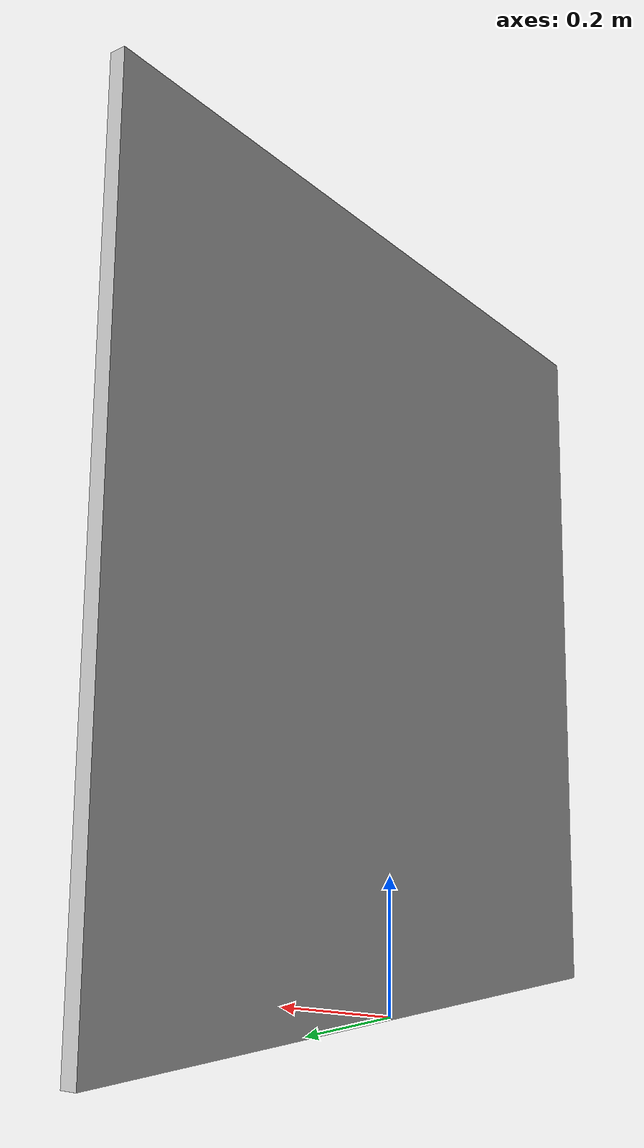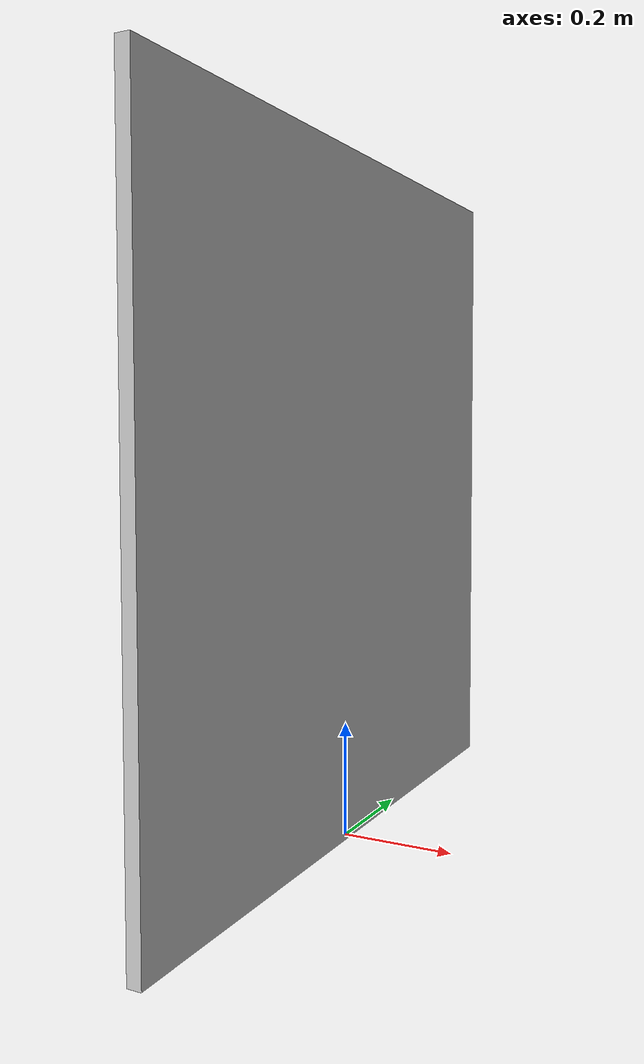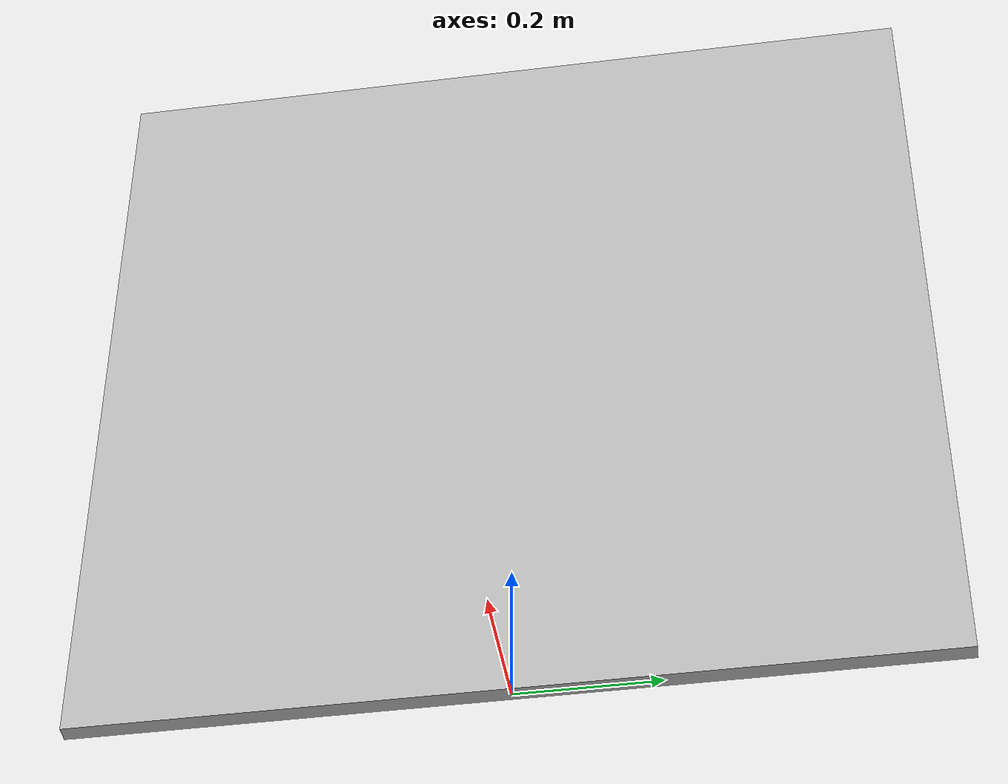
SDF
<?xml version="1.0" ?><sdf version="1.4">
  <model name="Leader_ID_23">
    <static>true</static>
    <link name="link">
      <visual name="visual">
        <geometry>
          <mesh>
            <uri>model://leader_id_23/meshes/Leader_ID_23.dae</uri>
          <scale>2.4 2.4 2.4</scale></mesh>
        </geometry>
      </visual>
    </link>
  </model>
</sdf>
